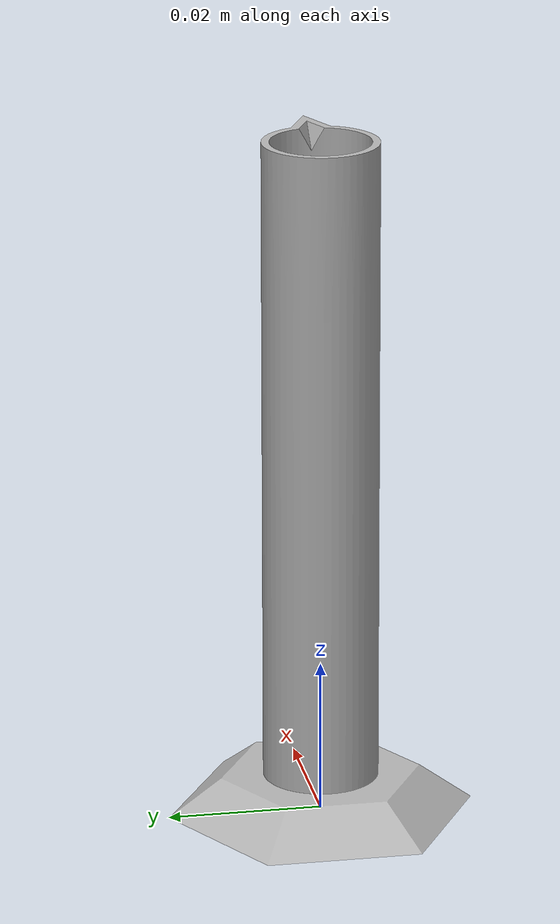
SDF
<sdf version="1.6">
  <model name="block">
    <static>false</static>
    <link name="link">
      <inertial>
        <mass>0.2</mass>
        <inertia>
          <ixx>0.001</ixx>
          <iyy>0.001</iyy>
          <izz>0.001</izz>
        </inertia>
      </inertial>
      <collision name="collision">
        <geometry>
          <mesh>
            <uri>package://hts_robotics/objects/meshes/Measuring_Cylinder_Small_Low_Fidelity_mm.stl</uri>
            <scale>0.001 0.001 0.001</scale>
          </mesh>
        </geometry>
        <pose>
          0.0 0.0 0.0 0.0 0.0 0.0
        </pose>
      </collision>
      <visual name="visual">
        <geometry>
          <mesh>
            <uri>package://hts_robotics/objects/meshes/Measuring_Cylinder_Small_Medium_Fidelity_mm.stl</uri>
            <scale>0.001 0.001 0.001</scale>
          </mesh>
        </geometry>
      </visual>
    </link>
  </model>
</sdf>
